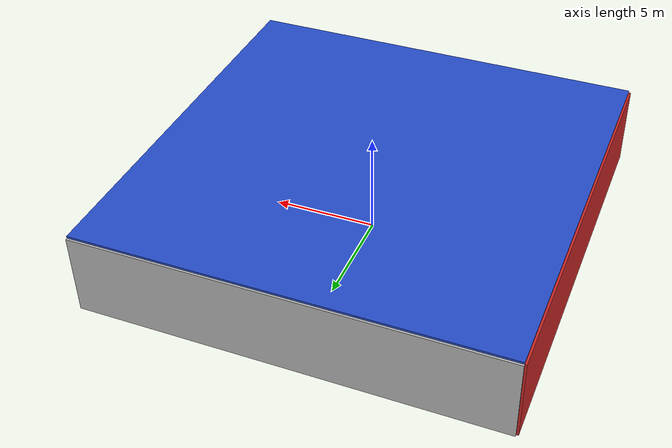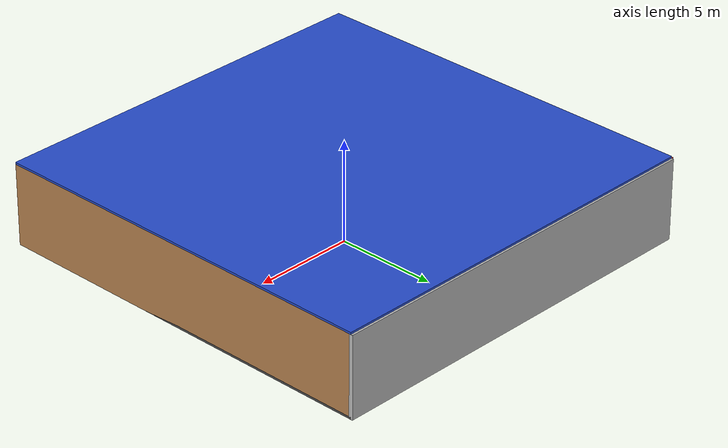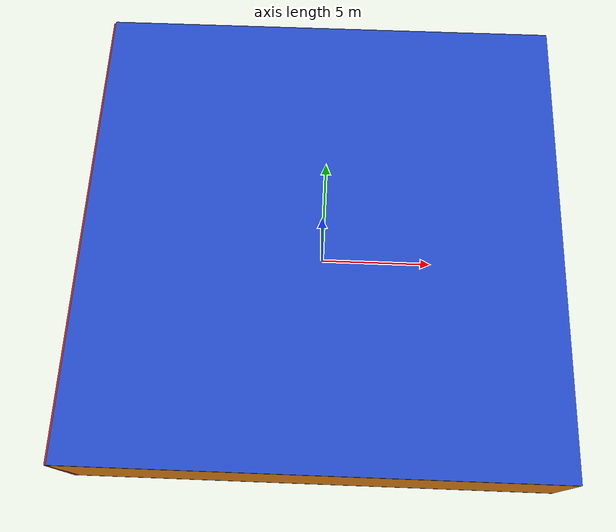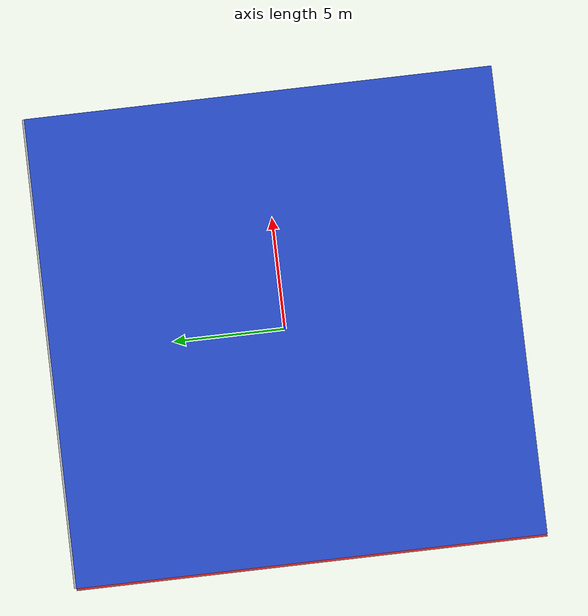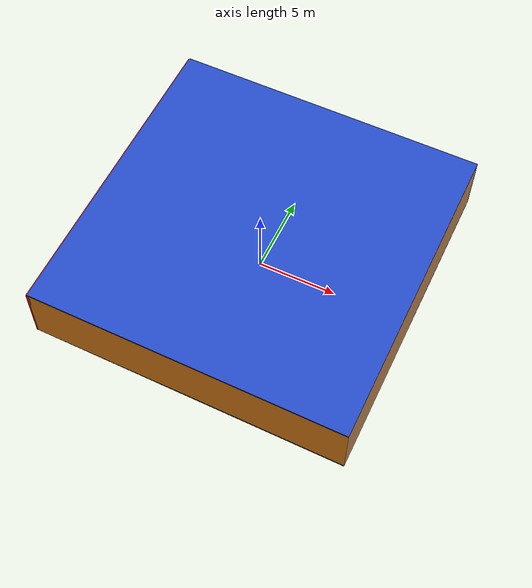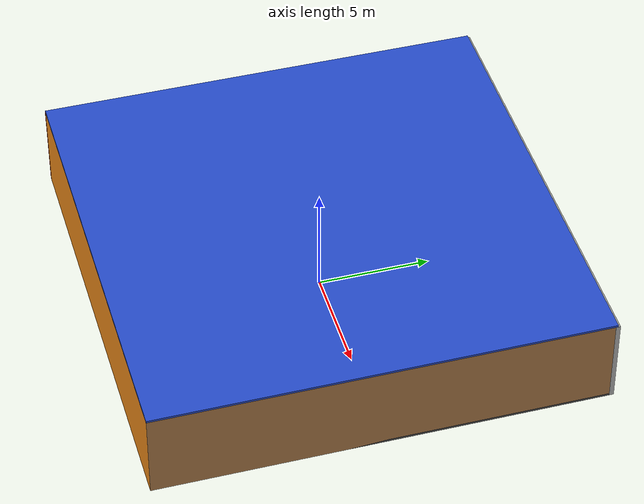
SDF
<sdf version="1.4">
 <world name="default">
  <physics type="ode">
   <max_step_size>0.001</max_step_size>
   <real_time_factor>1</real_time_factor>
   <real_time_update_rate>1000</real_time_update_rate>
   <gravity>0 0 -9.8</gravity>
  </physics>
  <scene><ambient>0.4 0.4 0.4 1</ambient><background>0.7 0.7 0.7 1</background><shadows>1</shadows></scene>
  <model name="Surrounding">
   <static>1</static>
   <link name="Ceiling">
    <collision name="Ceiling_Collision"><geometry><box><size>20 20 0.1</size></box></geometry></collision>
    <visual name="Ceiling_Visual">
     <geometry><box><size>20 20 0.1</size></box></geometry>
     <material>
      <script><uri>file://media/materials/scripts/gazebo.material</uri><name>Gazebo/Blue</name></script>
     </material>
    </visual>
    <pose>0 0 4.05 0 0 0</pose>
   </link>
   <link name="Wall_South">
    <collision name="Wall_South_Collision">
     <geometry><box><size>20 0 4</size></box></geometry>
     <pose>0 0 2 0 -0 0</pose>
    </collision>
    <visual name="Wall_South_Visual">
     <pose>0 0 2 0 -0 0</pose>
     <geometry><box><size>20 0 4</size></box></geometry>
     <material>
      <script><uri>file://media/materials/scripts/gazebo.material</uri><name>Gazebo/Orange</name></script>
     </material>
    </visual>
    <velocity_decay><linear>0</linear><angular>0</angular></velocity_decay>
    <pose>0 -10 0 0 -0 0</pose>
   </link>
   <link name="Wall_East">
    <collision name="Wall_21_Collision">
     <geometry><box><size>20 0 4</size></box></geometry>
     <pose>0 0 2 0 -0 0</pose>
    </collision>
    <visual name="Wall_21_Visual">
     <pose>0 0 2 0 -0 0</pose>
     <geometry><box><size>20 0 4</size></box></geometry>
     <material>
      <script><uri>file://media/materials/scripts/gazebo.material</uri><name>Gazebo/WoodFloor</name></script>
     </material>
    </visual>
    <velocity_decay><linear>0</linear><angular>0</angular></velocity_decay>
    <pose>10 0 0 0 -0 1.5708</pose>
   </link>
   <link name="Wall_North">
    <collision name="Wall_22_Collision">
     <geometry><box><size>20 0.2 4</size></box></geometry>
     <pose>0 0 2 0 -0 0</pose>
    </collision>
    <visual name="Wall_22_Visual">
     <pose>0 0 2 0 -0 0</pose>
     <geometry><box><size>20 0.2 4</size></box></geometry>
     <material>
      <script><uri>file://media/materials/scripts/gazebo.material</uri><name>Gazebo/CloudySky</name></script>
     </material>
    </visual>
    <velocity_decay><linear>0</linear><angular>0</angular></velocity_decay>
    <pose>0 10 0 0 -0 0</pose>
   </link>
   <link name="Wall_West">
    <collision name="Wall_23_Collision">
     <geometry><box><size>20 0.2 4</size></box></geometry>
     <pose>0 0 2 0 -0 0</pose>
    </collision>
    <visual name="Wall_23_Visual">
     <pose>0 0 2 0 -0 0</pose>
     <geometry><box><size>20 0.2 4</size></box></geometry>
     <material>
      <script><uri>file://media/materials/scripts/gazebo.material</uri><name>Gazebo/RedBright</name></script>
     </material>
    </visual>
    <velocity_decay><linear>0</linear><angular>0</angular></velocity_decay>
    <pose>-10 0 0 0 0 -1.5708</pose>
   </link>
   <link name="Ground_link">
    <collision name="collision">
     <pose>0 0 .05 0 -0 0</pose>
     <geometry><box><size>20 20 0.1</size></box></geometry>
    </collision>
    <visual name="visual">
     <pose>0 0 .05 0 -0 0</pose>
     <geometry><box><size>20 20 0.1</size></box></geometry>
     <material>
      <script><uri>file://media/materials/scripts/gazebo.material</uri><name>Gazebo/DarkGrey</name></script>
     </material>
    </visual>
   </link>
   <static>1</static>
  </model>
  <spherical_coordinates>
   <surface_model>EARTH_WGS84</surface_model>
   <latitude_deg>0</latitude_deg>
   <longitude_deg>0</longitude_deg>
   <elevation>0</elevation>
   <heading_deg>0</heading_deg>
  </spherical_coordinates>
  <light name="lightball_0" type="diffuse">
   <diffuse>0.8 0.8 0.8 1</diffuse>
   <specular>0.2 0.2 0.2 1</specular>
   <attenuation>
    <range>100</range>
    <constant>0.7</constant>
    <linear>0.01</linear>
    <quadratic>0.001</quadratic>
   </attenuation>
   <direction>-0.5 0.1 -0.9</direction>
   <pose>2.59143504136 4.77076799037 1.26241603375 0 0 0</pose>
  </light>
  <light name="lightball_1" type="diffuse">
   <diffuse>0.8 0.8 0.8 1</diffuse>
   <specular>0.2 0.2 0.2 1</specular>
   <attenuation>
    <range>100</range>
    <constant>0.7</constant>
    <linear>0.01</linear>
    <quadratic>0.001</quadratic>
   </attenuation>
   <direction>-0.5 0.1 -0.9</direction>
   <pose>-5.00658787269 4.87046333524 1.8215207729 0 0 0</pose>
  </light>
  <light name="lightball_2" type="diffuse">
   <diffuse>0.8 0.8 0.8 1</diffuse>
   <specular>0.2 0.2 0.2 1</specular>
   <attenuation>
    <range>100</range>
    <constant>0.7</constant>
    <linear>0.01</linear>
    <quadratic>0.001</quadratic>
   </attenuation>
   <direction>-0.5 0.1 -0.9</direction>
   <pose>3.04141312903 5.07262660928 3.27897574167 0 0 0</pose>
  </light>
  <light name="lightball_3" type="diffuse">
   <diffuse>0.8 0.8 0.8 1</diffuse>
   <specular>0.2 0.2 0.2 1</specular>
   <attenuation>
    <range>100</range>
    <constant>0.7</constant>
    <linear>0.01</linear>
    <quadratic>0.001</quadratic>
   </attenuation>
   <direction>-0.5 0.1 -0.9</direction>
   <pose>3.03517814252 -8.69969898003 3.61642674775 0 0 0</pose>
  </light>
  <light name="lightball_4" type="diffuse">
   <diffuse>0.8 0.8 0.8 1</diffuse>
   <specular>0.2 0.2 0.2 1</specular>
   <attenuation>
    <range>100</range>
    <constant>0.7</constant>
    <linear>0.01</linear>
    <quadratic>0.001</quadratic>
   </attenuation>
   <direction>-0.5 0.1 -0.9</direction>
   <pose>-5.44500723298 7.37052359785 2.57247026081 0 0 0</pose>
  </light>
  <include>
   <uri>model://robocup_3Dsim_goal</uri>
   <pose>-6.95529416227 6.84943466153 0 0 0 2.95961898256</pose>
  </include>
  <include><uri>model://cabinet</uri><pose>-3.79627387564 -4.62523950386 0 0 0 1.03857263184</pose></include>
  <include>
   <uri>model://construction_cone</uri>
   <pose>2.08781209537 -4.24352087418 0 0 0 1.80771395382</pose>
  </include>
  <include><uri>model://table</uri><pose>4.33772002084 -2.10563118701 0 0 0 0.897312562147</pose></include>
  <include>
   <uri>model://textured_shapes</uri>
   <pose>4.41810803434 1.4856407044 0 0 0 0.3107091982</pose>
  </include>
  <include><uri>model://cabinet</uri><pose>5.07695597842 7.86699195151 0 0 0 3.03829795284</pose></include>
  <include>
   <uri>model://construction_cone</uri>
   <pose>8.23653745929 -4.29601651552 0 0 0 0.181767305449</pose>
  </include>
 </world>
</sdf>

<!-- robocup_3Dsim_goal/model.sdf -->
<sdf version="1.5">
  <model name="robocup_3d_goal">
    <static>true</static>
    <link name="left_post">
      <pose>0 1.05 0.45 0 0 0</pose>
      <collision name="collision">
        <geometry>
          <cylinder>
            <radius>0.05</radius>
            <length>0.9</length>
          </cylinder>
        </geometry>
      </collision>
      <visual name="visual">
        <geometry>
          <cylinder>
            <radius>0.05</radius>
            <length>0.9</length>
          </cylinder>
        </geometry>
        <material>
          <script>
            <uri>file://media/materials/scripts/gazebo.material</uri>
            <name>Gazebo/ZincYellow</name>
          </script>
        </material>
      </visual>
    </link>
    <link name="left_support_horiz_lower">
      <pose>0.30 1.05 0.01 0 0 0</pose>
      <collision name="collision">
        <geometry>
          <box>
            <size>0.50 0.02 0.02</size>
          </box>
        </geometry>
      </collision>
      <visual name="visual">
        <geometry>
          <box>
            <size>0.50 0.02 0.02</size>
          </box>
        </geometry>
        <material>
          <script>
            <uri>file://media/materials/scripts/gazebo.material</uri>
            <name>Gazebo/White</name>
          </script>
        </material>
      </visual>
    </link>
    <link name="left_support_horiz_upper">
      <pose>0.30 1.05 0.79 0 0 0</pose>
      <collision name="collision">
        <geometry>
          <box>
            <size>0.50 0.02 0.02</size>
          </box>
        </geometry>
      </collision>
      <visual name="visual">
        <geometry>
          <box>
            <size>0.50 0.02 0.02</size>
          </box>
        </geometry>
        <material>
          <script>
            <uri>file://media/materials/scripts/gazebo.material</uri>
            <name>Gazebo/White</name>
          </script>
        </material>
      </visual>
    </link>
    <link name="left_support_vertical">
      <pose>0.56 1.05 0.4 0 1.5708 0</pose>
      <collision name="collision">
        <geometry>
          <box>
            <size>0.80 0.02 0.02</size>
          </box>
        </geometry>
      </collision>
      <visual name="visual">
        <geometry>
          <box>
            <size>0.80 0.02 0.02</size>
          </box>
        </geometry>
        <material>
          <script>
            <uri>file://media/materials/scripts/gazebo.material</uri>
            <name>Gazebo/White</name>
          </script>
        </material>
      </visual>
    </link>
    <link name="right_support_horiz_lower">
      <pose>0.30 -1.05 0.01 0 0 0</pose>
      <collision name="collision">
        <geometry>
          <box>
            <size>0.50 0.02 0.02</size>
          </box>
        </geometry>
      </collision>
      <visual name="visual">
        <geometry>
          <box>
            <size>0.50 0.02 0.02</size>
          </box>
        </geometry>
        <material>
          <script>
            <uri>file://media/materials/scripts/gazebo.material</uri>
            <name>Gazebo/White</name>
          </script>
        </material>
      </visual>
    </link>
    <link name="right_support_horiz_upper">
      <pose>0.30 -1.05 0.79 0 0 0</pose>
      <collision name="collision">
        <geometry>
          <box>
            <size>0.50 0.02 0.02</size>
          </box>
        </geometry>
      </collision>
      <visual name="visual">
        <geometry>
          <box>
            <size>0.50 0.02 0.02</size>
          </box>
        </geometry>
        <material>
          <script>
            <uri>file://media/materials/scripts/gazebo.material</uri>
            <name>Gazebo/White</name>
          </script>
        </material>
      </visual>
    </link>
    <link name="right_support_vertical">
      <pose>0.56 -1.05 0.4 0 1.5708 0</pose>
      <collision name="collision">
        <geometry>
          <box>
            <size>0.80 0.02 0.02</size>
          </box>
        </geometry>
      </collision>
      <visual name="visual">
        <geometry>
          <box>
            <size>0.80 0.02 0.02</size>
          </box>
        </geometry>
        <material>
          <script>
            <uri>file://media/materials/scripts/gazebo.material</uri>
            <name>Gazebo/White</name>
          </script>
        </material>
      </visual>
    </link>
    <link name="center_support_horiz_lower">
      <pose>0.56 0 0.01 0 1.5708 0</pose>
      <collision name="collision">
        <geometry>
          <box>
            <size>0.02 2.08 0.02</size>
          </box>
        </geometry>
      </collision>
      <visual name="visual">
        <geometry>
          <box>
            <size>0.02 2.08 0.02</size>
          </box>
        </geometry>
        <material>
          <script>
            <uri>file://media/materials/scripts/gazebo.material</uri>
            <name>Gazebo/White</name>
          </script>
        </material>
      </visual>
    </link>
    <link name="center_support_horiz_upper">
      <pose>0.56 0 0.79 0 1.5708 0</pose>
      <collision name="collision">
        <geometry>
          <box>
            <size>0.02 2.08 0.02</size>
          </box>
        </geometry>
      </collision>
      <visual name="visual">
        <geometry>
          <box>
            <size>0.02 2.08 0.02</size>
          </box>
        </geometry>
        <material>
          <script>
            <uri>file://media/materials/scripts/gazebo.material</uri>
            <name>Gazebo/White</name>
          </script>
        </material>
      </visual>
    </link>
    <link name="right_post">
      <pose>0 -1.05 0.45 0 0 0</pose>
      <collision name="collision">
        <geometry>
          <cylinder>
            <radius>0.05</radius>
            <length>0.9</length>
          </cylinder>
        </geometry>
      </collision>
      <visual name="visual">
        <geometry>
          <cylinder>
            <radius>0.05</radius>
            <length>0.9</length>
          </cylinder>
        </geometry>
        <material>
          <script>
            <uri>file://media/materials/scripts/gazebo.material</uri>
            <name>Gazebo/ZincYellow</name>
          </script>
        </material>
      </visual>
    </link>
    <link name="crossbar">
      <pose>0 0 0.85 1.57 1.57 0</pose>
      <collision name="collision">
        <geometry>
          <cylinder>
            <radius>0.05</radius>
            <length>2.0</length>
          </cylinder>
        </geometry>
      </collision>
      <visual name="visual">
        <geometry>
          <cylinder>
            <radius>0.05</radius>
            <length>2.0</length>
          </cylinder>
        </geometry>
        <material>
          <script>
            <uri>file://media/materials/scripts/gazebo.material</uri>
            <name>Gazebo/ZincYellow</name>
          </script>
        </material>
      </visual>
    </link>
    <link name="center_net">
      <pose>0.56 0 0.40 0 0 0</pose>
      <collision name="collision">
        <geometry>
          <box>
            <size>0.01 2.1 0.80</size>
          </box>
        </geometry>
      </collision>
      <visual name="visual">
        <geometry>
          <box>
            <size>0.01 2.1 0.80</size>
          </box>
        </geometry>
        <material>
          <script>
            <uri>model://../model_source/models/robocup09_spl_field/materials/scripts/</uri>
            <uri>model://../model_source/models/robocup09_spl_field/materials/textures/</uri>
            <name>RoboCup/Net</name>
          </script>
        </material>
      </visual>
    </link>
    <link name="left_net">
      <pose>0.30 1.05 0.40 0 0 0</pose>
      <collision name="collision">
        <geometry>
          <box>
            <size>0.50 0.01 0.76</size>
          </box>
        </geometry>
      </collision>
      <visual name="visual">
        <geometry>
          <box>
            <size>0.50 0.01 0.76</size>
          </box>
        </geometry>
        <material>
          <script>
            <uri>model://../model_source/models/robocup09_spl_field/materials/scripts/</uri>
            <uri>model://../model_source/models/robocup09_spl_field/materials/textures/</uri>
            <name>RoboCup/Net</name>
          </script>
        </material>
      </visual>
    </link>
    <link name="right_net">
      <pose>0.30 -1.05 0.40 0 0 0</pose>
      <collision name="collision">
        <geometry>
          <box>
            <size>0.50 0.01 0.76</size>
          </box>
        </geometry>
      </collision>
      <visual name="visual">
        <geometry>
          <box>
            <size>0.50 0.01 0.76</size>
          </box>
        </geometry>
        <material>
          <script>
            <uri>model://../model_source/models/robocup09_spl_field/materials/scripts/</uri>
            <uri>model://../model_source/models/robocup09_spl_field/materials/textures/</uri>
            <name>RoboCup/Net</name>
          </script>
        </material>
      </visual>
    </link>
  </model>
</sdf>

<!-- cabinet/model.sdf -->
<sdf version="1.5">
  <model name="cabinet">
    <static>true</static>
    <link name="cabinet_bottom_plate">
      <inertial>
        <pose>0 0 -1 0 0 0</pose>
        <inertia>
          <ixx>2.050000</ixx>
          <ixy>0</ixy>
          <ixz>0</ixz>
          <iyy>2.050000</iyy>
          <iyz>0</iyz>
          <izz>2.050000</izz>
        </inertia>
        <mass>25.000000</mass>
      </inertial>
      <collision name="cabinet_bottom_plate_geom">
        <pose>0 0 0.010000 0 0 0</pose>
        <geometry>
          <box>
            <size>0.450000 0.450000 0.020000</size>
          </box>
        </geometry>
      </collision>
      <visual name="cabinet_bottom_plate_geom_visual">
        <pose>0 0 0.010000 0 0 0</pose>
        <geometry>
          <box>
            <size>0.450000 0.450000 0.020000</size>
          </box>
        </geometry>
        <material>
          <script>
            <uri>model://media/materials/scripts/gazebo.material</uri>
            <name>Gazebo/Wood</name>
          </script>
        </material>
      </visual>
      <collision name="cabinet_bottom_plate_geom_cabinet_back_plate">
        <pose>0.235000 0 0.510000 0 0 0</pose>
        <geometry>
          <box>
            <size>0.020000 0.450000 1.020000</size>
          </box>
        </geometry>
      </collision>
      <visual name="cabinet_bottom_plate_geom_cabinet_back_plate_visual">
        <pose>0.235000 0 0.510000 0 0 0</pose>
        <geometry>
          <box>
            <size>0.020000 0.450000 1.020000</size>
          </box>
        </geometry>
        <material>
          <script>
            <uri>model://media/materials/scripts/gazebo.material</uri>
            <name>Gazebo/Wood</name>
          </script>
        </material>
      </visual>
      <collision name="cabinet_bottom_plate_geom_cabinet_left_plate">
        <pose>0 0.235000 0.510000 0 0 0</pose>
        <geometry>
          <box>
            <size>0.450000 0.020000 1.020000</size>
          </box>
        </geometry>
      </collision>
      <visual name="cabinet_bottom_plate_geom_cabinet_left_plate_visual">
        <pose>0 0.235000 0.510000 0 0 0</pose>
        <geometry>
          <box>
            <size>0.450000 0.020000 1.020000</size>
          </box>
        </geometry>
        <material>
          <script>
            <uri>model://media/materials/scripts/gazebo.material</uri>
            <name>Gazebo/Wood</name>
          </script>
        </material>
      </visual>
      <collision name="cabinet_bottom_plate_geom_cabinet_middle_plate">
        <pose>0 0 0.510000 0 0 0</pose>
        <geometry>
          <box>
            <size>0.450000 0.450000 0.020000</size>
          </box>
        </geometry>
      </collision>
      <visual name="cabinet_bottom_plate_geom_cabinet_middle_plate_visual">
        <pose>0 0 0.510000 0 0 0</pose>
        <geometry>
          <box>
            <size>0.450000 0.450000 0.020000</size>
          </box>
        </geometry>
        <material>
          <script>
            <uri>model://media/materials/scripts/gazebo.material</uri>
            <name>Gazebo/Wood</name>
          </script>
        </material>
      </visual>
      <collision name="cabinet_bottom_plate_geom_cabinet_right_plate">
        <pose>0 -0.235000 0.510000 0 0 0</pose>
        <geometry>
          <box>
            <size>0.450000 0.020000 1.020000</size>
          </box>
        </geometry>
      </collision>
      <visual name="cabinet_bottom_plate_geom_cabinet_right_plate_visual">
        <pose>0 -0.235000 0.510000 0 0 0</pose>
        <geometry>
          <box>
            <size>0.450000 0.020000 1.020000</size>
          </box>
        </geometry>
        <material>
          <script>
            <uri>model://media/materials/scripts/gazebo.material</uri>
            <name>Gazebo/Wood</name>
          </script>
        </material>
      </visual>
      <collision name="cabinet_bottom_plate_geom_cabinet_top_plate">
        <pose>0 0 1.010000 0 0 0</pose>
        <geometry>
          <box>
            <size>0.450000 0.450000 0.020000</size>
          </box>
        </geometry>
      </collision>
      <visual name="cabinet_bottom_plate_geom_cabinet_top_plate_visual">
        <pose>0 0 1.010000 0 0 0</pose>
        <geometry>
          <box>
            <size>0.450000 0.450000 0.020000</size>
          </box>
        </geometry>
        <material>
          <script>
            <uri>model://media/materials/scripts/gazebo.material</uri>
            <name>Gazebo/Wood</name>
          </script>
        </material>
      </visual>
    </link>
  </model>
</sdf>

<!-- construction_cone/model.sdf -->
<sdf version="1.5">
  <model name="Construction Cone">
    <link name="link">
      <collision name="collision">
        <geometry>
          <mesh>
            <scale>10 10 10</scale>
            <uri>file://isr-testbed/construction_cone/meshes/construction_cone.dae</uri>
          </mesh>
        </geometry>
      </collision>
      <visual name="visual">
        <geometry>
          <mesh>
            <scale>10 10 10</scale>
            <uri>file://isr-testbed/construction_cone/meshes/construction_cone.dae</uri>
          </mesh>
        </geometry>
      </visual>
    </link>
  </model>
</sdf>

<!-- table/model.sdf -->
<sdf version="1.5">
  <model name="table">
    <static>true</static>
    <link name="link">
      <collision name="surface">
        <pose>0 0 1.0 0 0 0</pose>
        <geometry>
          <box>
            <size>1.5 0.8 0.03</size>
          </box>
        </geometry>
        <surface>
          <friction>
            <ode>
              <mu>0.6</mu>
              <mu2>0.6</mu2>
            </ode>
          </friction>
        </surface>
      </collision>
      <visual name="visual1">
        <pose>0 0 1.0 0 0 0</pose>
        <geometry>
          <box>
            <size>1.5 0.8 0.03</size>
          </box>
        </geometry>
        <material>
          <script>
            <uri>model://media/materials/scripts/gazebo.material</uri>
            <name>Gazebo/Wood</name>
          </script>
        </material>
      </visual>
      <collision name="front_left_leg">
        <pose>0.68 0.38 0.5 0 0 0</pose>
        <geometry>
          <cylinder>
            <radius>0.02</radius>
            <length>1.0</length>
          </cylinder>
        </geometry>
      </collision>
      <visual name="front_left_leg">
        <pose>0.68 0.38 0.5 0 0 0</pose>
        <geometry>
          <cylinder>
            <radius>0.02</radius>
            <length>1.0</length>
          </cylinder>
        </geometry>
        <material>
          <script>
            <uri>model://media/materials/scripts/gazebo.material</uri>
            <name>Gazebo/Grey</name>
          </script>
        </material>
      </visual>
      <collision name="front_right_leg">
        <pose>0.68 -0.38 0.5 0 0 0</pose>
        <geometry>
          <cylinder>
            <radius>0.02</radius>
            <length>1.0</length>
          </cylinder>
        </geometry>
      </collision>
      <visual name="front_right_leg">
        <pose>0.68 -0.38 0.5 0 0 0</pose>
        <geometry>
          <cylinder>
            <radius>0.02</radius>
            <length>1.0</length>
          </cylinder>
        </geometry>
        <material>
          <script>
            <uri>model://media/materials/scripts/gazebo.material</uri>
            <name>Gazebo/Grey</name>
          </script>
        </material>
      </visual>
      <collision name="back_right_leg">
        <pose>-0.68 -0.38 0.5 0 0 0</pose>
        <geometry>
          <cylinder>
            <radius>0.02</radius>
            <length>1.0</length>
          </cylinder>
        </geometry>
      </collision>
      <visual name="back_right_leg">
        <pose>-0.68 -0.38 0.5 0 0 0</pose>
        <geometry>
          <cylinder>
            <radius>0.02</radius>
            <length>1.0</length>
          </cylinder>
        </geometry>
        <material>
          <script>
            <uri>model://media/materials/scripts/gazebo.material</uri>
            <name>Gazebo/Grey</name>
          </script>
        </material>
      </visual>
      <collision name="back_left_leg">
        <pose>-0.68 0.38 0.5 0 0 0</pose>
        <geometry>
          <cylinder>
            <radius>0.02</radius>
            <length>1.0</length>
          </cylinder>
        </geometry>
      </collision>
      <visual name="back_left_leg">
        <pose>-0.68 0.38 0.5 0 0 0</pose>
        <geometry>
          <cylinder>
            <radius>0.02</radius>
            <length>1.0</length>
          </cylinder>
        </geometry>
        <material>
          <script>
            <uri>model://media/materials/scripts/gazebo.material</uri>
            <name>Gazebo/Grey</name>
          </script>
        </material>
      </visual>
    </link>
  </model>
</sdf>

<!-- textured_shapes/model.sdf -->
<sdf version="1.6">
  <model name="textured_shapes">
    <pose>0 0 0.5 0 0 0</pose>
    <link name="box">
      <pose>0 -1.5 0 0 0 0</pose>
      <collision name="collision">
        <geometry>
          <box>
            <size>1 1 1</size>
          </box>
        </geometry>
      </collision>
      <visual name="visual">
        <geometry>
          <box>
            <size>1 1 1</size>
          </box>
        </geometry>
        <material>
          <script>
            <uri>model://../model_source/models/textured_shapes/materials/scripts</uri>
            <uri>model://../model_source/models/textured_shapes/materials/textures</uri>
            <name>TexturedShape/Squares</name>
          </script>
        </material>
      </visual>
    </link>
    <link name="sphere">
      <collision name="collision">
        <geometry>
          <sphere>
            <radius>0.5</radius>
          </sphere>
        </geometry>
      </collision>
      <visual name="visual">
        <geometry>
          <sphere>
            <radius>0.5</radius>
          </sphere>
        </geometry>
        <material>
          <script>
            <uri>model://../model_source/models/textured_shapes/materials/scripts</uri>
            <uri>model://../model_source/models/textured_shapes/materials/textures</uri>
            <name>TexturedShape/Squares</name>
          </script>
        </material>
      </visual>
    </link>
    <link name="cylinder">
      <pose>0 1.5 0 0 0 0</pose>
      <collision name="collision">
        <geometry>
          <cylinder>
            <radius>0.5</radius>
            <length>1</length>
          </cylinder>
        </geometry>
      </collision>
      <visual name="visual">
        <geometry>
          <cylinder>
            <radius>0.5</radius>
            <length>1</length>
          </cylinder>
        </geometry>
        <material>
          <script>
            <uri>model://../model_source/models/textured_shapes/materials/scripts</uri>
            <uri>model://../model_source/models/textured_shapes/materials/textures</uri>
            <name>TexturedShape/Squares</name>
          </script>
        </material>
      </visual>
    </link>
  </model>
</sdf>
